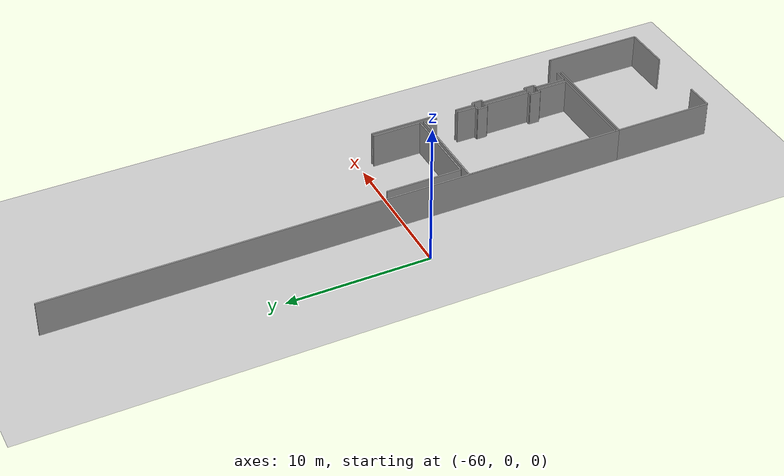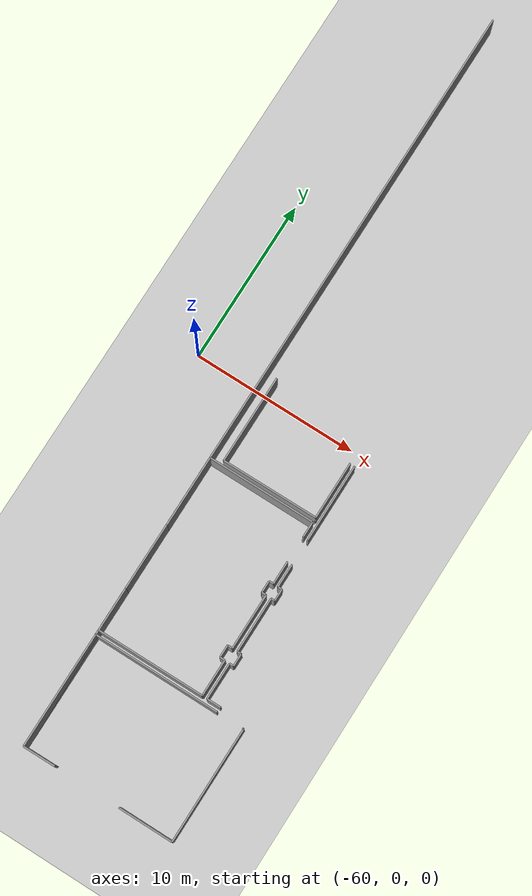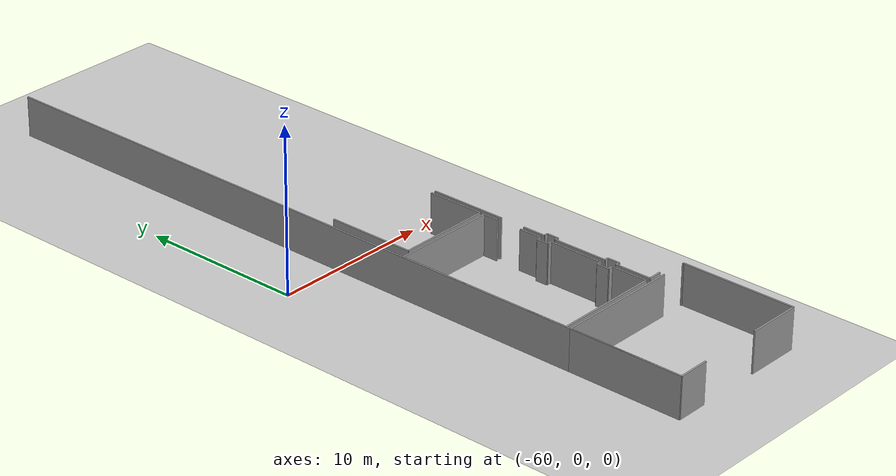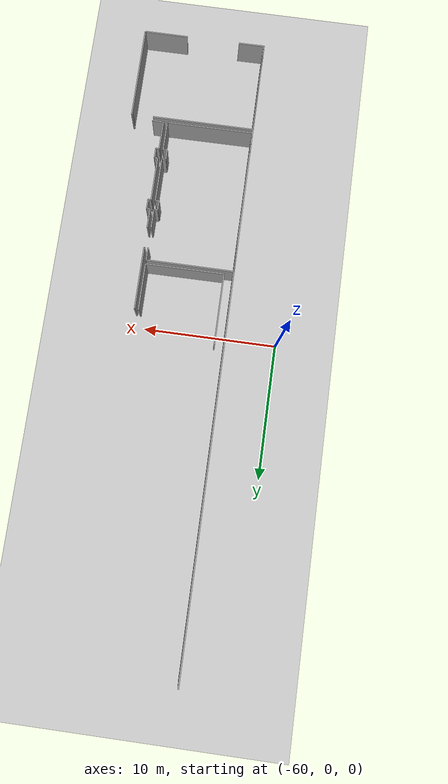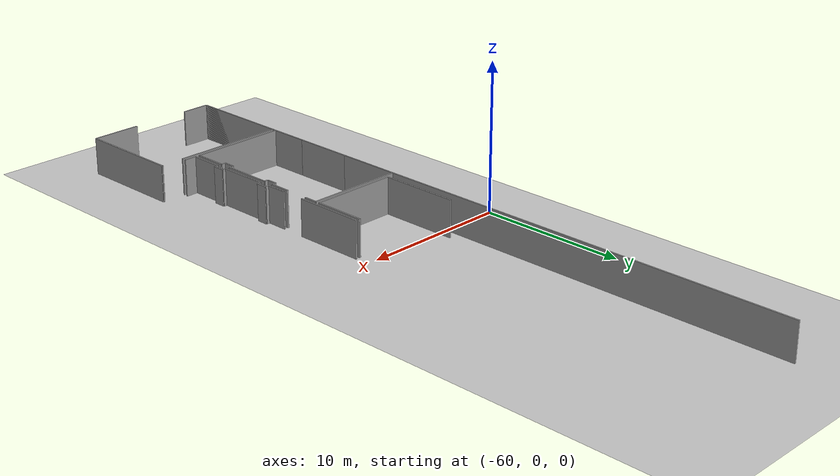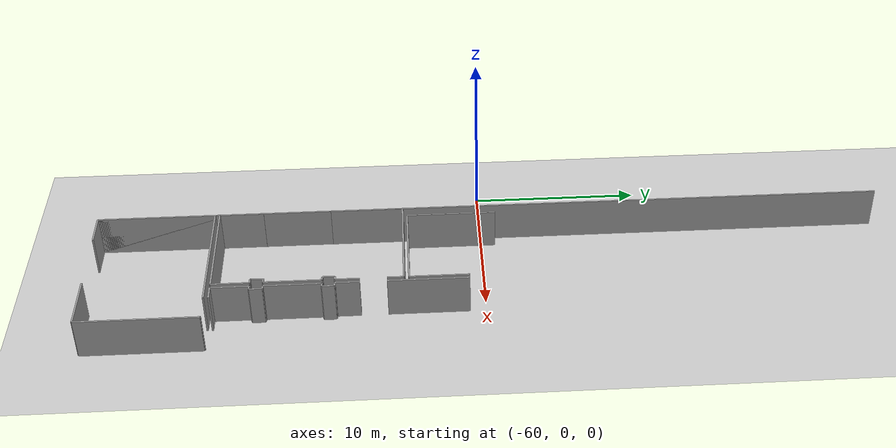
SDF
<sdf version="1.6">
 <world name="default">
  <model name="ground_plane">
   <static>1</static>
   <link name="link">
    <collision name="collision">
     <geometry><plane><normal>0 0 1</normal><size>100 100</size></plane></geometry>
     <surface><friction><ode><mu>100</mu><mu2>50</mu2></ode></friction></surface>
    </collision>
    <visual name="visual">
     <cast_shadows>0</cast_shadows>
     <geometry><plane><normal>0 0 1</normal><size>100 100</size></plane></geometry>
     <material>
      <script><uri>file://media/materials/scripts/gazebo.material</uri><name>Gazebo/Grey</name></script>
     </material>
    </visual>
   </link>
  </model>
  <model name="50057024">
   <static>1</static>
   <link name="Wall_81">
    <collision name="Wall_81_Collision">
     <geometry><box><size>5.34954060378 0.1 2.5</size></box></geometry>
     <pose>2.67477030189 0 1.25 0 0 0</pose>
    </collision>
    <visual name="Wall_81_Visual">
     <pose>2.67477030189 0 1.25 0 0 0</pose>
     <geometry><box><size>5.34954060378 0.1 2.5</size></box></geometry>
     <material>
      <script><uri>file://media/materials/scripts/gazebo.material</uri><name>Gazebo/Grey</name></script>
      <ambient>1 1 1 1</ambient>
     </material>
    </visual>
    <pose>0.709163195039 -28.9704325109 0 0 0 1.57079632679</pose>
   </link>
   <link name="Wall_89">
    <collision name="Wall_89_Collision">
     <geometry><box><size>3.50016169225 0.1 2.5</size></box></geometry>
     <pose>1.75008084613 0 1.25 0 0 0</pose>
    </collision>
    <visual name="Wall_89_Visual">
     <pose>1.75008084613 0 1.25 0 0 0</pose>
     <geometry><box><size>3.50016169225 0.1 2.5</size></box></geometry>
     <material>
      <script><uri>file://media/materials/scripts/gazebo.material</uri><name>Gazebo/Grey</name></script>
      <ambient>1 1 1 1</ambient>
     </material>
    </visual>
    <pose>6.56128136354 -25.4416100744 0 0 0 -1.57079632679</pose>
   </link>
   <link name="Wall_90">
    <collision name="Wall_90_Collision">
     <geometry><box><size>5.85218835107 0.1 2.5</size></box></geometry>
     <pose>2.92609417553 0 1.25 0 0 0</pose>
    </collision>
    <visual name="Wall_90_Visual">
     <pose>2.92609417553 0 1.25 0 0 0</pose>
     <geometry><box><size>5.85218835107 0.1 2.5</size></box></geometry>
     <material>
      <script><uri>file://media/materials/scripts/gazebo.material</uri><name>Gazebo/Grey</name></script>
      <ambient>1 1 1 1</ambient>
     </material>
    </visual>
    <pose>6.56128136354 -28.9417717666 0 0 0 -3.1366951935</pose>
   </link>
   <link name="Wall_91">
    <collision name="Wall_91_Collision">
     <geometry><box><size>2.64655341868 0.1 2.5</size></box></geometry>
     <pose>1.32327670934 0 1.25 0 0 0</pose>
    </collision>
    <visual name="Wall_91_Visual">
     <pose>1.32327670934 0 1.25 0 0 0</pose>
     <geometry><box><size>2.64655341868 0.1 2.5</size></box></geometry>
     <material>
      <script><uri>file://media/materials/scripts/gazebo.material</uri><name>Gazebo/Grey</name></script>
      <ambient>1 1 1 1</ambient>
     </material>
    </visual>
    <pose>0.00481906319948 -40.283817459 0 0 0 1.57079632679</pose>
   </link>
   <link name="Wall_92">
    <collision name="Wall_92_Collision">
     <geometry><box><size>4.34489274414 0.1 2.5</size></box></geometry>
     <pose>2.17244637207 0 1.25 0 0 0</pose>
    </collision>
    <visual name="Wall_92_Visual">
     <pose>2.17244637207 0 1.25 0 0 0</pose>
     <geometry><box><size>4.34489274414 0.1 2.5</size></box></geometry>
     <material>
      <script><uri>file://media/materials/scripts/gazebo.material</uri><name>Gazebo/Grey</name></script>
      <ambient>1 1 1 1</ambient>
     </material>
    </visual>
    <pose>0.00481906319948 -33.5791055565 0 0 0 1.57079632679</pose>
   </link>
   <link name="Wall_93">
    <collision name="Wall_93_Collision">
     <geometry><box><size>6.55037506262 0.1 2.5</size></box></geometry>
     <pose>3.27518753131 0 1.25 0 0 0</pose>
    </collision>
    <visual name="Wall_93_Visual">
     <pose>3.27518753131 0 1.25 0 0 0</pose>
     <geometry><box><size>6.55037506262 0.1 2.5</size></box></geometry>
     <material>
      <script><uri>file://media/materials/scripts/gazebo.material</uri><name>Gazebo/Grey</name></script>
      <ambient>1 1 1 1</ambient>
     </material>
    </visual>
    <pose>0.00481906319948 -29.2342128124 0 0 0 0.0</pose>
   </link>
   <link name="Wall_94">
    <collision name="Wall_94_Collision">
     <geometry><box><size>0.948340910676 0.1 2.5</size></box></geometry>
     <pose>0.474170455338 0 1.25 0 0 0</pose>
    </collision>
    <visual name="Wall_94_Visual">
     <pose>0.474170455338 0 1.25 0 0 0</pose>
     <geometry><box><size>0.948340910676 0.1 2.5</size></box></geometry>
     <material>
      <script><uri>file://media/materials/scripts/gazebo.material</uri><name>Gazebo/Grey</name></script>
      <ambient>1 1 1 1</ambient>
     </material>
    </visual>
    <pose>6.55519412582 -29.2342128124 0 0 0 -1.57079632679</pose>
   </link>
   <link name="Wall_95">
    <collision name="Wall_95_Collision">
     <geometry><box><size>1.41388777924 0.1 2.5</size></box></geometry>
     <pose>0.706943889618 0 1.25 0 0 0</pose>
    </collision>
    <visual name="Wall_95_Visual">
     <pose>0.706943889618 0 1.25 0 0 0</pose>
     <geometry><box><size>1.41388777924 0.1 2.5</size></box></geometry>
     <material>
      <script><uri>file://media/materials/scripts/gazebo.material</uri><name>Gazebo/Grey</name></script>
      <ambient>1 1 1 1</ambient>
     </material>
    </visual>
    <pose>6.55519412582 -31.7676450633 0 0 0 -1.57079632679</pose>
   </link>
   <link name="Wall_96">
    <collision name="Wall_96_Collision">
     <geometry><box><size>0.276715681612 0.1 2.5</size></box></geometry>
     <pose>0.138357840806 0 1.25 0 0 0</pose>
    </collision>
    <visual name="Wall_96_Visual">
     <pose>0.138357840806 0 1.25 0 0 0</pose>
     <geometry><box><size>0.276715681612 0.1 2.5</size></box></geometry>
     <material>
      <script><uri>file://media/materials/scripts/gazebo.material</uri><name>Gazebo/Grey</name></script>
      <ambient>1 1 1 1</ambient>
     </material>
    </visual>
    <pose>6.55519412582 -33.1815328425 0 0 0 3.14159265359</pose>
   </link>
   <link name="Wall_97">
    <collision name="Wall_97_Collision">
     <geometry><box><size>0.725142194069 0.1 2.5</size></box></geometry>
     <pose>0.362571097034 0 1.25 0 0 0</pose>
    </collision>
    <visual name="Wall_97_Visual">
     <pose>0.362571097034 0 1.25 0 0 0</pose>
     <geometry><box><size>0.725142194069 0.1 2.5</size></box></geometry>
     <material>
      <script><uri>file://media/materials/scripts/gazebo.material</uri><name>Gazebo/Grey</name></script>
      <ambient>1 1 1 1</ambient>
     </material>
    </visual>
    <pose>6.2784784442 -33.1815328425 0 0 0 -1.57079632679</pose>
   </link>
   <link name="Wall_98">
    <collision name="Wall_98_Collision">
     <geometry><box><size>0.275574324539 0.1 2.5</size></box></geometry>
     <pose>0.137787162269 0 1.25 0 0 0</pose>
    </collision>
    <visual name="Wall_98_Visual">
     <pose>0.137787162269 0 1.25 0 0 0</pose>
     <geometry><box><size>0.275574324539 0.1 2.5</size></box></geometry>
     <material>
      <script><uri>file://media/materials/scripts/gazebo.material</uri><name>Gazebo/Grey</name></script>
      <ambient>1 1 1 1</ambient>
     </material>
    </visual>
    <pose>6.2784784442 -33.9066750366 0 0 0 0.0</pose>
   </link>
   <link name="Wall_99">
    <collision name="Wall_99_Collision">
     <geometry><box><size>3.36763745427 0.1 2.5</size></box></geometry>
     <pose>1.68381872713 0 1.25 0 0 0</pose>
    </collision>
    <visual name="Wall_99_Visual">
     <pose>1.68381872713 0 1.25 0 0 0</pose>
     <geometry><box><size>3.36763745427 0.1 2.5</size></box></geometry>
     <material>
      <script><uri>file://media/materials/scripts/gazebo.material</uri><name>Gazebo/Grey</name></script>
      <ambient>1 1 1 1</ambient>
     </material>
    </visual>
    <pose>6.55405276874 -33.9066750366 0 0 0 -1.57079632679</pose>
   </link>
   <link name="Wall_100">
    <collision name="Wall_100_Collision">
     <geometry><box><size>0.298655100915 0.1 2.5</size></box></geometry>
     <pose>0.149327550457 0 1.25 0 0 0</pose>
    </collision>
    <visual name="Wall_100_Visual">
     <pose>0.149327550457 0 1.25 0 0 0</pose>
     <geometry><box><size>0.298655100915 0.1 2.5</size></box></geometry>
     <material>
      <script><uri>file://media/materials/scripts/gazebo.material</uri><name>Gazebo/Grey</name></script>
      <ambient>1 1 1 1</ambient>
     </material>
    </visual>
    <pose>6.55405276874 -37.2743124909 0 0 0 3.14159265359</pose>
   </link>
   <link name="Wall_101">
    <collision name="Wall_101_Collision">
     <geometry><box><size>0.75329566855 0.1 2.5</size></box></geometry>
     <pose>0.376647834275 0 1.25 0 0 0</pose>
    </collision>
    <visual name="Wall_101_Visual">
     <pose>0.376647834275 0 1.25 0 0 0</pose>
     <geometry><box><size>0.75329566855 0.1 2.5</size></box></geometry>
     <material>
      <script><uri>file://media/materials/scripts/gazebo.material</uri><name>Gazebo/Grey</name></script>
      <ambient>1 1 1 1</ambient>
     </material>
    </visual>
    <pose>6.25539766783 -37.2743124909 0 0 0 -1.57079632679</pose>
   </link>
   <link name="Wall_102">
    <collision name="Wall_102_Collision">
     <geometry><box><size>0.305122790998 0.1 2.5</size></box></geometry>
     <pose>0.152561395499 0 1.25 0 0 0</pose>
    </collision>
    <visual name="Wall_102_Visual">
     <pose>0.152561395499 0 1.25 0 0 0</pose>
     <geometry><box><size>0.305122790998 0.1 2.5</size></box></geometry>
     <material>
      <script><uri>file://media/materials/scripts/gazebo.material</uri><name>Gazebo/Grey</name></script>
      <ambient>1 1 1 1</ambient>
     </material>
    </visual>
    <pose>6.25539766783 -38.0276081594 0 0 0 0.0</pose>
   </link>
   <link name="Wall_103">
    <collision name="Wall_103_Collision">
     <geometry><box><size>2.23236761843 0.1 2.5</size></box></geometry>
     <pose>1.11618380922 0 1.25 0 0 0</pose>
    </collision>
    <visual name="Wall_103_Visual">
     <pose>1.11618380922 0 1.25 0 0 0</pose>
     <geometry><box><size>2.23236761843 0.1 2.5</size></box></geometry>
     <material>
      <script><uri>file://media/materials/scripts/gazebo.material</uri><name>Gazebo/Grey</name></script>
      <ambient>1 1 1 1</ambient>
     </material>
    </visual>
    <pose>6.56052045883 -38.0276081594 0 0 0 -1.57079632679</pose>
   </link>
   <link name="Wall_104">
    <collision name="Wall_104_Collision">
     <geometry><box><size>6.55574474903 0.1 2.5</size></box></geometry>
     <pose>3.27787237451 0 1.25 0 0 0</pose>
    </collision>
    <visual name="Wall_104_Visual">
     <pose>3.27787237451 0 1.25 0 0 0</pose>
     <geometry><box><size>6.55574474903 0.1 2.5</size></box></geometry>
     <material>
      <script><uri>file://media/materials/scripts/gazebo.material</uri><name>Gazebo/Grey</name></script>
      <ambient>1 1 1 1</ambient>
     </material>
    </visual>
    <pose>6.56052045883 -40.2599757779 0 0 0 -3.13795588392</pose>
   </link>
   <link name="Wall_105">
    <collision name="Wall_105_Collision">
     <geometry><box><size>7.03152047785 0.1 2.5</size></box></geometry>
     <pose>3.51576023892 0 1.25 0 0 0</pose>
    </collision>
    <visual name="Wall_105_Visual">
     <pose>3.51576023892 0 1.25 0 0 0</pose>
     <geometry><box><size>7.03152047785 0.1 2.5</size></box></geometry>
     <material>
      <script><uri>file://media/materials/scripts/gazebo.material</uri><name>Gazebo/Grey</name></script>
      <ambient>1 1 1 1</ambient>
     </material>
    </visual>
    <pose>0.0 -47.59446315 0 0 0 1.57079632679</pose>
   </link>
   <link name="Wall_106">
    <collision name="Wall_106_Collision">
     <geometry><box><size>7.69959481824 0.1 2.5</size></box></geometry>
     <pose>3.84979740912 0 1.25 0 0 0</pose>
    </collision>
    <visual name="Wall_106_Visual">
     <pose>3.84979740912 0 1.25 0 0 0</pose>
     <geometry><box><size>7.69959481824 0.1 2.5</size></box></geometry>
     <material>
      <script><uri>file://media/materials/scripts/gazebo.material</uri><name>Gazebo/Grey</name></script>
      <ambient>1 1 1 1</ambient>
     </material>
    </visual>
    <pose>0.0 -40.5629426722 0 0 0 0.0</pose>
   </link>
   <link name="Wall_107">
    <collision name="Wall_107_Collision">
     <geometry><box><size>0.0826849791068 0.1 2.5</size></box></geometry>
     <pose>0.0413424895534 0 1.25 0 0 0</pose>
    </collision>
    <visual name="Wall_107_Visual">
     <pose>0.0413424895534 0 1.25 0 0 0</pose>
     <geometry><box><size>0.0826849791068 0.1 2.5</size></box></geometry>
     <material>
      <script><uri>file://media/materials/scripts/gazebo.material</uri><name>Gazebo/Grey</name></script>
      <ambient>1 1 1 1</ambient>
     </material>
    </visual>
    <pose>9.28024754767 -40.5629426722 0 0 0 0.0</pose>
   </link>
   <link name="Wall_108">
    <collision name="Wall_108_Collision">
     <geometry><box><size>7.0171901057 0.1 2.5</size></box></geometry>
     <pose>3.50859505285 0 1.25 0 0 0</pose>
    </collision>
    <visual name="Wall_108_Visual">
     <pose>3.50859505285 0 1.25 0 0 0</pose>
     <geometry><box><size>7.0171901057 0.1 2.5</size></box></geometry>
     <material>
      <script><uri>file://media/materials/scripts/gazebo.material</uri><name>Gazebo/Grey</name></script>
      <ambient>1 1 1 1</ambient>
     </material>
    </visual>
    <pose>9.36293252677 -40.5629426722 0 0 0 -1.57079632679</pose>
   </link>
   <link name="Wall_109">
    <collision name="Wall_109_Collision">
     <geometry><box><size>3.34798074911 0.1 2.5</size></box></geometry>
     <pose>1.67399037456 0 1.25 0 0 0</pose>
    </collision>
    <visual name="Wall_109_Visual">
     <pose>1.67399037456 0 1.25 0 0 0</pose>
     <geometry><box><size>3.34798074911 0.1 2.5</size></box></geometry>
     <material>
      <script><uri>file://media/materials/scripts/gazebo.material</uri><name>Gazebo/Grey</name></script>
      <ambient>1 1 1 1</ambient>
     </material>
    </visual>
    <pose>9.36293252677 -47.5801327779 0 0 0 3.14159265359</pose>
   </link>
   <link name="Wall_110">
    <collision name="Wall_110_Collision">
     <geometry><box><size>1.96077700251 0.1 2.5</size></box></geometry>
     <pose>0.980388501254 0 1.25 0 0 0</pose>
    </collision>
    <visual name="Wall_110_Visual">
     <pose>0.980388501254 0 1.25 0 0 0</pose>
     <geometry><box><size>1.96077700251 0.1 2.5</size></box></geometry>
     <material>
      <script><uri>file://media/materials/scripts/gazebo.material</uri><name>Gazebo/Grey</name></script>
      <ambient>1 1 1 1</ambient>
     </material>
    </visual>
    <pose>1.96072463492 -47.5801327779 0 0 0 -3.13428407148</pose>
   </link>
   <link name="Wall_111">
    <collision name="Wall_111_Collision">
     <geometry><box><size>2.2260267458 0.1 2.5</size></box></geometry>
     <pose>1.1130133729 0 1.25 0 0 0</pose>
    </collision>
    <visual name="Wall_111_Visual">
     <pose>1.1130133729 0 1.25 0 0 0</pose>
     <geometry><box><size>2.2260267458 0.1 2.5</size></box></geometry>
     <material>
      <script><uri>file://media/materials/scripts/gazebo.material</uri><name>Gazebo/Grey</name></script>
      <ambient>1 1 1 1</ambient>
     </material>
    </visual>
    <pose>6.86577006728 -40.2656825632 0 0 0 1.57079632679</pose>
   </link>
   <link name="Wall_112">
    <collision name="Wall_112_Collision">
     <geometry><box><size>0.253761722688 0.1 2.5</size></box></geometry>
     <pose>0.126880861344 0 1.25 0 0 0</pose>
    </collision>
    <visual name="Wall_112_Visual">
     <pose>0.126880861344 0 1.25 0 0 0</pose>
     <geometry><box><size>0.253761722688 0.1 2.5</size></box></geometry>
     <material>
      <script><uri>file://media/materials/scripts/gazebo.material</uri><name>Gazebo/Grey</name></script>
      <ambient>1 1 1 1</ambient>
     </material>
    </visual>
    <pose>6.86577006728 -38.0396558174 0 0 0 0.0</pose>
   </link>
   <link name="Wall_113">
    <collision name="Wall_113_Collision">
     <geometry><box><size>0.761411985517 0.1 2.5</size></box></geometry>
     <pose>0.380705992759 0 1.25 0 0 0</pose>
    </collision>
    <visual name="Wall_113_Visual">
     <pose>0.380705992759 0 1.25 0 0 0</pose>
     <geometry><box><size>0.761411985517 0.1 2.5</size></box></geometry>
     <material>
      <script><uri>file://media/materials/scripts/gazebo.material</uri><name>Gazebo/Grey</name></script>
      <ambient>1 1 1 1</ambient>
     </material>
    </visual>
    <pose>7.11953178996 -38.0396558174 0 0 0 1.57079632679</pose>
   </link>
   <link name="Wall_114">
    <collision name="Wall_114_Collision">
     <geometry><box><size>0.246533127889 0.1 2.5</size></box></geometry>
     <pose>0.123266563945 0 1.25 0 0 0</pose>
    </collision>
    <visual name="Wall_114_Visual">
     <pose>0.123266563945 0 1.25 0 0 0</pose>
     <geometry><box><size>0.246533127889 0.1 2.5</size></box></geometry>
     <material>
      <script><uri>file://media/materials/scripts/gazebo.material</uri><name>Gazebo/Grey</name></script>
      <ambient>1 1 1 1</ambient>
     </material>
    </visual>
    <pose>7.11953178996 -37.2782438319 0 0 0 3.14159265359</pose>
   </link>
   <link name="Wall_115">
    <collision name="Wall_115_Collision">
     <geometry><box><size>3.3597747722 0.1 2.5</size></box></geometry>
     <pose>1.6798873861 0 1.25 0 0 0</pose>
    </collision>
    <visual name="Wall_115_Visual">
     <pose>1.6798873861 0 1.25 0 0 0</pose>
     <geometry><box><size>3.3597747722 0.1 2.5</size></box></geometry>
     <material>
      <script><uri>file://media/materials/scripts/gazebo.material</uri><name>Gazebo/Grey</name></script>
      <ambient>1 1 1 1</ambient>
     </material>
    </visual>
    <pose>6.87299866208 -37.2782438319 0 0 0 1.57079632679</pose>
   </link>
   <link name="Wall_116">
    <collision name="Wall_116_Collision">
     <geometry><box><size>0.232202755743 0.1 2.5</size></box></geometry>
     <pose>0.116101377872 0 1.25 0 0 0</pose>
    </collision>
    <visual name="Wall_116_Visual">
     <pose>0.116101377872 0 1.25 0 0 0</pose>
     <geometry><box><size>0.232202755743 0.1 2.5</size></box></geometry>
     <material>
      <script><uri>file://media/materials/scripts/gazebo.material</uri><name>Gazebo/Grey</name></script>
      <ambient>1 1 1 1</ambient>
     </material>
    </visual>
    <pose>6.87299866208 -33.9184690597 0 0 0 0.0</pose>
   </link>
   <link name="Wall_117">
    <collision name="Wall_117_Collision">
     <geometry><box><size>0.728693082742 0.1 2.5</size></box></geometry>
     <pose>0.364346541371 0 1.25 0 0 0</pose>
    </collision>
    <visual name="Wall_117_Visual">
     <pose>0.364346541371 0 1.25 0 0 0</pose>
     <geometry><box><size>0.728693082742 0.1 2.5</size></box></geometry>
     <material>
      <script><uri>file://media/materials/scripts/gazebo.material</uri><name>Gazebo/Grey</name></script>
      <ambient>1 1 1 1</ambient>
     </material>
    </visual>
    <pose>7.10520141782 -33.9184690597 0 0 0 1.57079632679</pose>
   </link>
   <link name="Wall_118">
    <collision name="Wall_118_Collision">
     <geometry><box><size>0.258961238246 0.1 2.5</size></box></geometry>
     <pose>0.129480619123 0 1.25 0 0 0</pose>
    </collision>
    <visual name="Wall_118_Visual">
     <pose>0.129480619123 0 1.25 0 0 0</pose>
     <geometry><box><size>0.258961238246 0.1 2.5</size></box></geometry>
     <material>
      <script><uri>file://media/materials/scripts/gazebo.material</uri><name>Gazebo/Grey</name></script>
      <ambient>1 1 1 1</ambient>
     </material>
    </visual>
    <pose>7.10520141782 -33.189775977 0 0 0 3.14159265359</pose>
   </link>
   <link name="Wall_119">
    <collision name="Wall_119_Collision">
     <geometry><box><size>1.4217504613 0.1 2.5</size></box></geometry>
     <pose>0.710875230649 0 1.25 0 0 0</pose>
    </collision>
    <visual name="Wall_119_Visual">
     <pose>0.710875230649 0 1.25 0 0 0</pose>
     <geometry><box><size>1.4217504613 0.1 2.5</size></box></geometry>
     <material>
      <script><uri>file://media/materials/scripts/gazebo.material</uri><name>Gazebo/Grey</name></script>
      <ambient>1 1 1 1</ambient>
     </material>
    </visual>
    <pose>6.84624017957 -33.189775977 0 0 0 1.57079632679</pose>
   </link>
   <link name="Wall_120">
    <collision name="Wall_120_Collision">
     <geometry><box><size>4.75299130666 0.1 2.5</size></box></geometry>
     <pose>2.37649565333 0 1.25 0 0 0</pose>
    </collision>
    <visual name="Wall_120_Visual">
     <pose>2.37649565333 0 1.25 0 0 0</pose>
     <geometry><box><size>4.75299130666 0.1 2.5</size></box></geometry>
     <material>
      <script><uri>file://media/materials/scripts/gazebo.material</uri><name>Gazebo/Grey</name></script>
      <ambient>1 1 1 1</ambient>
     </material>
    </visual>
    <pose>6.84624017957 -30.2004349839 0 0 0 1.57079632679</pose>
   </link>
   <link name="Wall_131">
    <collision name="Wall_131_Collision">
     <geometry><box><size>0.857843204454 0.1 2.5</size></box></geometry>
     <pose>0.428921602227 0 1.25 0 0 0</pose>
    </collision>
    <visual name="Wall_131_Visual">
     <pose>0.428921602227 0 1.25 0 0 0</pose>
     <geometry><box><size>0.857843204454 0.1 2.5</size></box></geometry>
     <material>
      <script><uri>file://media/materials/scripts/gazebo.material</uri><name>Gazebo/Grey</name></script>
      <ambient>1 1 1 1</ambient>
     </material>
    </visual>
    <pose>7.72356331678 -40.2564248892 0 0 0 -3.13080064207</pose>
   </link>
   <link name="Wall_211">
    <collision name="Wall_211_Collision">
     <geometry><box><size>47.59446315 0.1 2.5</size></box></geometry>
     <pose>23.797231575 0 1.25 0 0 0</pose>
    </collision>
    <visual name="Wall_211_Visual">
     <pose>23.797231575 0 1.25 0 0 0</pose>
     <geometry><box><size>47.59446315 0.1 2.5</size></box></geometry>
     <material>
      <script><uri>file://media/materials/scripts/gazebo.material</uri><name>Gazebo/Grey</name></script>
      <ambient>1 1 1 1</ambient>
     </material>
    </visual>
    <pose>0.0 -47.59446315 0 0 0 1.57079632679</pose>
   </link>
   <pose>-56.15 24.49446315 0 0 0 0</pose>
  </model>
 </world>
</sdf>
